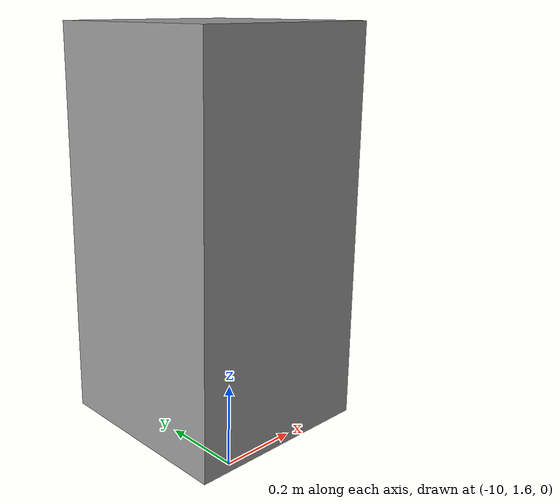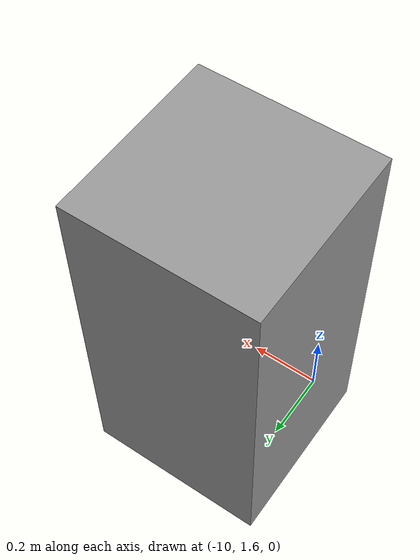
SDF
<?xml version='1.0'?>
<sdf version='1.7'>
  <model name='airport_bin'>
    <pose>-5.04886 1.03775 0 0 -0 0</pose>
    <link name='Wall_17'>
      <collision name='Wall_17_Collision'>
        <geometry>
          <box>
            <size>0.5 0.5 1</size>
          </box>
        </geometry>
        <pose>0 0 0.5 0 -0 0</pose>
      </collision>
      <visual name='Wall_17_Visual'>
        <pose>0 0 0.5 0 -0 0</pose>
        <geometry>
          <box>
            <size>0.5 0.5 1</size>
          </box>
        </geometry>
        <material>
          <script>
            <uri>file://media/materials/scripts/gazebo.material</uri>
            <name>Gazebo/Grey</name>
          </script>
          <ambient>1 1 1 1</ambient>
        </material>
        <meta>
          <layer>0</layer>
        </meta>
      </visual>
      <pose>-4.79886 0.787753 0 0 -0 0</pose>
    </link>
    <static>1</static>
  </model>
</sdf>
